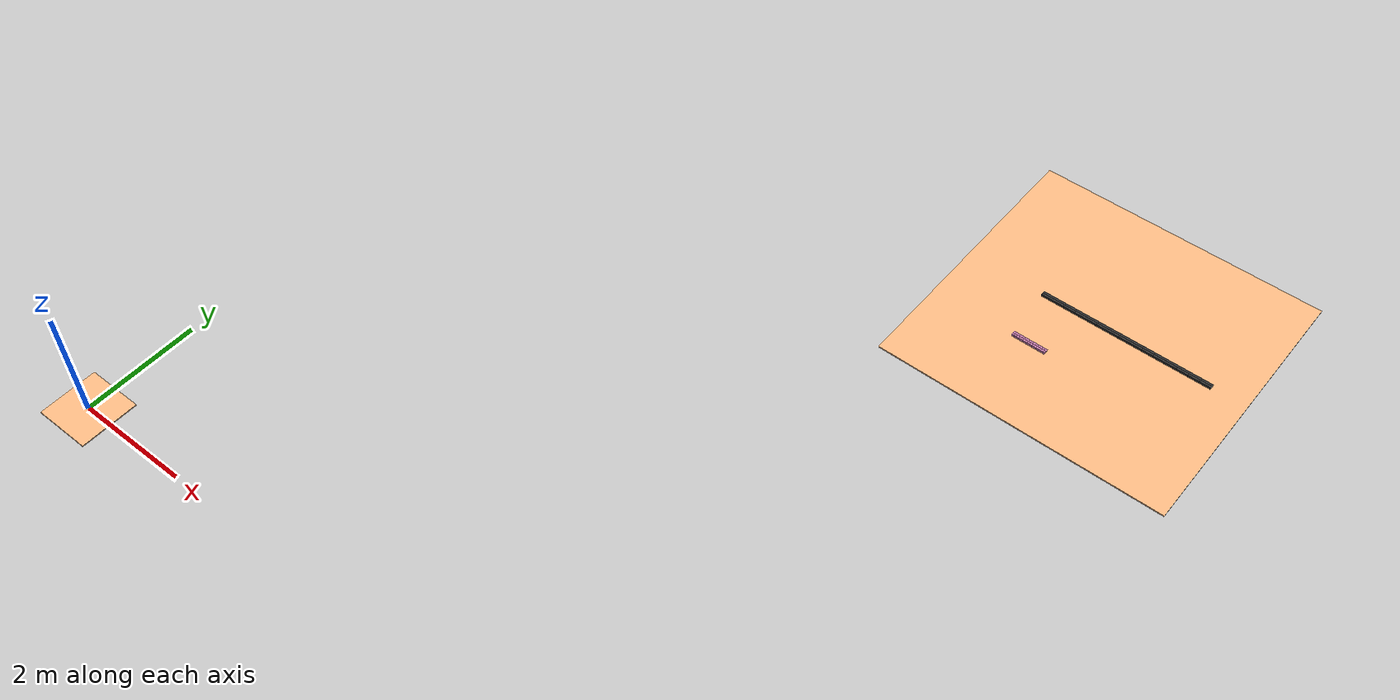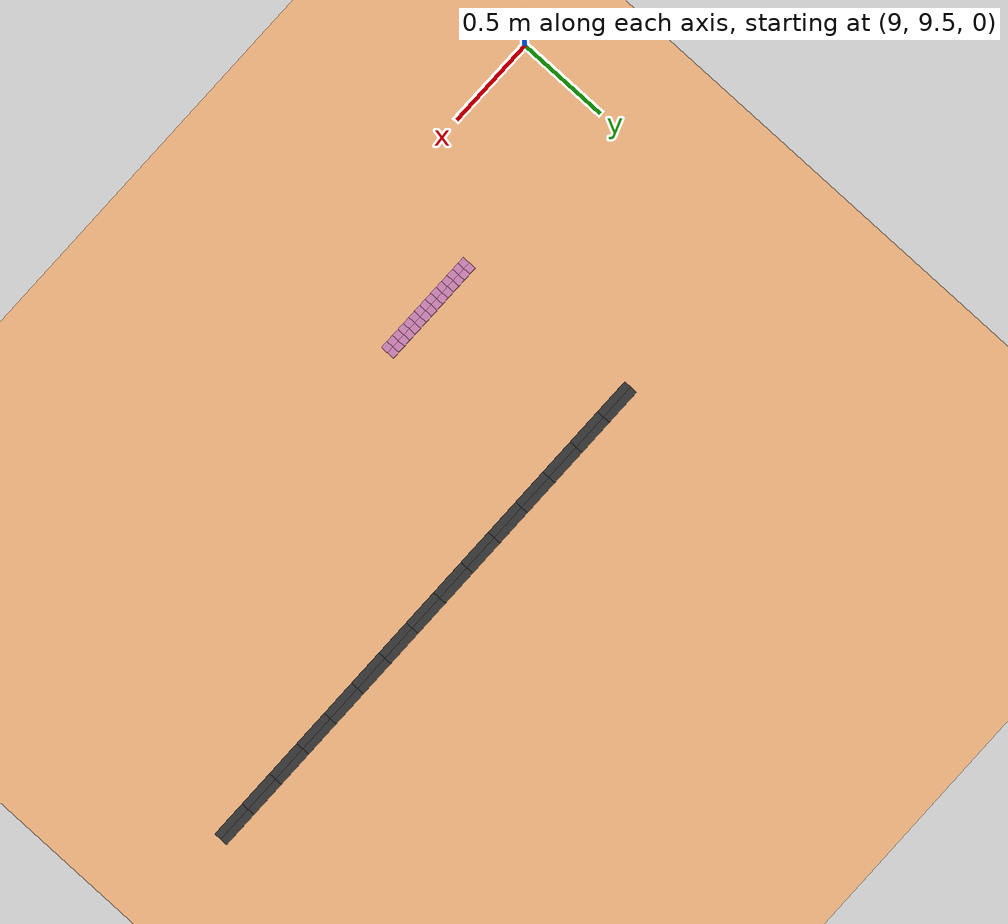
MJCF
<mujoco>
    <compiler angle="radian" coordinate="global" inertiafromgeom="auto"/>
    <option timestep="0.002">
        <flag warmstart="enable"/>
    </option>
    <size nconmax="3000" njmax="3000"/>

    <include file="shared.xml"/>
    <worldbody>
        <light directional="true" ambient="0.2 0.2 0.2" diffuse="0.8 0.8 0.8" specular="0.3 0.3 0.3" castshadow="false"
               pos="0 0 5" dir="0 0 -1" name="light0"/>
        <camera quat="0.866 0.500 0.0 0.0" pos="0 -1.8 1.4" name="camera" fovy="25"/>

        <include file="cube.xml"/>
        <include file="cuboid.xml"/>
        <body name="table" pos="0 0 -0.01">
            <geom name="table_base" pos="0 0 -0.01" material="table_mat" rgba="0.94 0.70 0.49 1" size="0.5 0.5 0.01"
                  type="box"/>
        </body>
        <body name="table1" pos="11 11 -0.01">
            <geom name="table_base1" pos="11 11 -0.01" material="table_mat" rgba="0.94 0.70 0.49 1" size="2.5 2.5 0.01"
                  type="box"/>
        </body>
    </worldbody>

</mujoco>

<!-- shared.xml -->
<mujoco>
    <asset>
        <texture builtin="gradient" height="100" rgb1="0.9 0.9 0.9" rgb2="0.9 0.9 0.9" type="skybox" width="100"/>
        <texture builtin="flat" height="32" name="cube_tex" rgb1="1 1 1" type="cube" width="32"/>
        <texture builtin="flat" height="32" name="cuboid_tex" rgb1="1 1 1" type="cube" width="32"/>
        <texture builtin="flat" height="32" name="table_tex" rgb1="1 1 1" type="cube" width="32"/>
        <texture builtin="flat" height="32" name="cube_0_tex" rgb1="1 1 1" type="cube" width="32"/>
        <texture builtin="flat" height="32" name="cuboid_0_tex" rgb1="1 1 1" type="cube" width="32"/>
        <texture builtin="flat" height="32" name="cube_1_tex" rgb1="1 1 1" type="cube" width="32"/>
        <texture builtin="flat" height="32" name="cuboid_1_tex" rgb1="1 1 1" type="cube" width="32"/>
        <texture builtin="flat" height="32" name="cube_2_tex" rgb1="1 1 1" type="cube" width="32"/>
        <texture builtin="flat" height="32" name="cuboid_2_tex" rgb1="1 1 1" type="cube" width="32"/>
        <texture builtin="flat" height="32" name="cube_3_tex" rgb1="1 1 1" type="cube" width="32"/>
        <texture builtin="flat" height="32" name="cuboid_3_tex" rgb1="1 1 1" type="cube" width="32"/>
        <texture builtin="flat" height="32" name="cube_4_tex" rgb1="1 1 1" type="cube" width="32"/>
        <texture builtin="flat" height="32" name="cuboid_4_tex" rgb1="1 1 1" type="cube" width="32"/>
        <texture builtin="flat" height="32" name="cube_5_tex" rgb1="1 1 1" type="cube" width="32"/>
        <texture builtin="flat" height="32" name="cuboid_5_tex" rgb1="1 1 1" type="cube" width="32"/>
        <texture builtin="flat" height="32" name="cube_6_tex" rgb1="1 1 1" type="cube" width="32"/>
        <texture builtin="flat" height="32" name="cuboid_6_tex" rgb1="1 1 1" type="cube" width="32"/>
        <texture builtin="flat" height="32" name="cube_7_tex" rgb1="1 1 1" type="cube" width="32"/>
        <texture builtin="flat" height="32" name="cuboid_7_tex" rgb1="1 1 1" type="cube" width="32"/>
        <texture builtin="flat" height="32" name="cube_8_tex" rgb1="1 1 1" type="cube" width="32"/>
        <texture builtin="flat" height="32" name="cuboid_8_tex" rgb1="1 1 1" type="cube" width="32"/>
        <texture builtin="flat" height="32" name="cube_9_tex" rgb1="1 1 1" type="cube" width="32"/>
        <texture builtin="flat" height="32" name="cuboid_9_tex" rgb1="1 1 1" type="cube" width="32"/>
        <texture builtin="flat" height="32" name="cube_10_tex" rgb1="1 1 1" type="cube" width="32"/>
        <texture builtin="flat" height="32" name="cuboid_10_tex" rgb1="1 1 1" type="cube" width="32"/>
        <texture builtin="flat" height="32" name="cube_11_tex" rgb1="1 1 1" type="cube" width="32"/>
        <texture builtin="flat" height="32" name="cuboid_11_tex" rgb1="1 1 1" type="cube" width="32"/>
        <texture builtin="flat" height="32" name="cube_12_tex" rgb1="1 1 1" type="cube" width="32"/>
        <texture builtin="flat" height="32" name="cuboid_12_tex" rgb1="1 1 1" type="cube" width="32"/>
        <texture builtin="flat" height="32" name="cube_13_tex" rgb1="1 1 1" type="cube" width="32"/>
        <texture builtin="flat" height="32" name="cuboid_13_tex" rgb1="1 1 1" type="cube" width="32"/>
        <texture builtin="flat" height="32" name="cube_14_tex" rgb1="1 1 1" type="cube" width="32"/>
        <texture builtin="flat" height="32" name="cuboid_14_tex" rgb1="1 1 1" type="cube" width="32"/>
        <texture builtin="flat" height="32" name="cube_15_tex" rgb1="1 1 1" type="cube" width="32"/>
        <texture builtin="flat" height="32" name="cuboid_15_tex" rgb1="1 1 1" type="cube" width="32"/>
        <texture builtin="flat" height="32" name="cube_16_tex" rgb1="1 1 1" type="cube" width="32"/>
        <texture builtin="flat" height="32" name="cuboid_16_tex" rgb1="1 1 1" type="cube" width="32"/>
        <texture builtin="flat" height="32" name="cube_17_tex" rgb1="1 1 1" type="cube" width="32"/>
        <texture builtin="flat" height="32" name="cuboid_17_tex" rgb1="1 1 1" type="cube" width="32"/>
        <texture builtin="flat" height="32" name="cube_18_tex" rgb1="1 1 1" type="cube" width="32"/>
        <texture builtin="flat" height="32" name="cuboid_18_tex" rgb1="1 1 1" type="cube" width="32"/>
        <texture builtin="flat" height="32" name="cube_19_tex" rgb1="1 1 1" type="cube" width="32"/>
        <texture builtin="flat" height="32" name="cuboid_19_tex" rgb1="1 1 1" type="cube" width="32"/>
        <texture builtin="flat" height="32" name="cube_20_tex" rgb1="1 1 1" type="cube" width="32"/>
        <texture builtin="flat" height="32" name="cuboid_20_tex" rgb1="1 1 1" type="cube" width="32"/>
        <texture builtin="flat" height="32" name="cube_21_tex" rgb1="1 1 1" type="cube" width="32"/>
        <texture builtin="flat" height="32" name="cuboid_21_tex" rgb1="1 1 1" type="cube" width="32"/>
        <texture builtin="flat" height="32" name="cube_22_tex" rgb1="1 1 1" type="cube" width="32"/>
        <texture builtin="flat" height="32" name="cuboid_22_tex" rgb1="1 1 1" type="cube" width="32"/>
        <texture builtin="flat" height="32" name="cube_23_tex" rgb1="1 1 1" type="cube" width="32"/>
        <texture builtin="flat" height="32" name="cuboid_23_tex" rgb1="1 1 1" type="cube" width="32"/>
        <texture builtin="flat" height="32" name="cube_24_tex" rgb1="1 1 1" type="cube" width="32"/>
        <texture builtin="flat" height="32" name="cuboid_24_tex" rgb1="1 1 1" type="cube" width="32"/>
        <texture builtin="flat" height="32" name="cube_25_tex" rgb1="1 1 1" type="cube" width="32"/>
        <texture builtin="flat" height="32" name="cuboid_25_tex" rgb1="1 1 1" type="cube" width="32"/>
        <texture builtin="flat" height="32" name="cube_26_tex" rgb1="1 1 1" type="cube" width="32"/>
        <texture builtin="flat" height="32" name="cuboid_26_tex" rgb1="1 1 1" type="cube" width="32"/>
        <texture builtin="flat" height="32" name="cube_27_tex" rgb1="1 1 1" type="cube" width="32"/>
        <texture builtin="flat" height="32" name="cuboid_27_tex" rgb1="1 1 1" type="cube" width="32"/>
        <texture builtin="flat" height="32" name="cube_28_tex" rgb1="1 1 1" type="cube" width="32"/>
        <texture builtin="flat" height="32" name="cuboid_28_tex" rgb1="1 1 1" type="cube" width="32"/>
        <texture builtin="flat" height="32" name="cube_29_tex" rgb1="1 1 1" type="cube" width="32"/>
        <texture builtin="flat" height="32" name="cuboid_29_tex" rgb1="1 1 1" type="cube" width="32"/>

        <material name="table_mat" specular="0" shininess="0.5" reflectance="0" rgba="0.2 0.2 0.2 1"
                  texture="table_tex"/>
        <material name="cube_mat" specular="0" shininess="0.5" reflectance="0" rgba="0.2 0.2 0.2 1" texture="cube_tex"/>
        <material name="cuboid_mat" specular="0" shininess="0.5" reflectance="0" rgba="0.2 0.2 0.2 1"
                  texture="cuboid_tex"/>
        <material name="cube_0_mat" specular="0" shininess="0.5" reflectance="0" rgba="0.2 0.2 0.2 1"
                  texture="cube_0_tex"/>
        <material name="cuboid_0_mat" specular="0" shininess="0.5" reflectance="0" rgba="0.2 0.2 0.2 1"
                  texture="cuboid_0_tex"/>
        <material name="cube_1_mat" specular="0" shininess="0.5" reflectance="0" rgba="0.2 0.2 0.2 1"
                  texture="cube_1_tex"/>
        <material name="cuboid_1_mat" specular="0" shininess="0.5" reflectance="0" rgba="0.2 0.2 0.2 1"
                  texture="cuboid_1_tex"/>
        <material name="cube_2_mat" specular="0" shininess="0.5" reflectance="0" rgba="0.2 0.2 0.2 1"
                  texture="cube_2_tex"/>
        <material name="cuboid_2_mat" specular="0" shininess="0.5" reflectance="0" rgba="0.2 0.2 0.2 1"
                  texture="cuboid_2_tex"/>
        <material name="cube_3_mat" specular="0" shininess="0.5" reflectance="0" rgba="0.2 0.2 0.2 1"
                  texture="cube_3_tex"/>
        <material name="cuboid_3_mat" specular="0" shininess="0.5" reflectance="0" rgba="0.2 0.2 0.2 1"
                  texture="cuboid_3_tex"/>
        <material name="cube_4_mat" specular="0" shininess="0.5" reflectance="0" rgba="0.2 0.2 0.2 1"
                  texture="cube_4_tex"/>
        <material name="cuboid_4_mat" specular="0" shininess="0.5" reflectance="0" rgba="0.2 0.2 0.2 1"
                  texture="cuboid_4_tex"/>
        <material name="cube_5_mat" specular="0" shininess="0.5" reflectance="0" rgba="0.2 0.2 0.2 1"
                  texture="cube_5_tex"/>
        <material name="cuboid_5_mat" specular="0" shininess="0.5" reflectance="0" rgba="0.2 0.2 0.2 1"
                  texture="cuboid_5_tex"/>
        <material name="cube_6_mat" specular="0" shininess="0.5" reflectance="0" rgba="0.2 0.2 0.2 1"
                  texture="cube_6_tex"/>
        <material name="cuboid_6_mat" specular="0" shininess="0.5" reflectance="0" rgba="0.2 0.2 0.2 1"
                  texture="cuboid_6_tex"/>
        <material name="cube_7_mat" specular="0" shininess="0.5" reflectance="0" rgba="0.2 0.2 0.2 1"
                  texture="cube_7_tex"/>
        <material name="cuboid_7_mat" specular="0" shininess="0.5" reflectance="0" rgba="0.2 0.2 0.2 1"
                  texture="cuboid_7_tex"/>
        <material name="cube_8_mat" specular="0" shininess="0.5" reflectance="0" rgba="0.2 0.2 0.2 1"
                  texture="cube_8_tex"/>
        <material name="cuboid_8_mat" specular="0" shininess="0.5" reflectance="0" rgba="0.2 0.2 0.2 1"
                  texture="cuboid_8_tex"/>
        <material name="cube_9_mat" specular="0" shininess="0.5" reflectance="0" rgba="0.2 0.2 0.2 1"
                  texture="cube_9_tex"/>
        <material name="cuboid_9_mat" specular="0" shininess="0.5" reflectance="0" rgba="0.2 0.2 0.2 1"
                  texture="cuboid_9_tex"/>
        <material name="cube_10_mat" specular="0" shininess="0.5" reflectance="0" rgba="0.2 0.2 0.2 1"
                  texture="cube_10_tex"/>
        <material name="cuboid_10_mat" specular="0" shininess="0.5" reflectance="0" rgba="0.2 0.2 0.2 1"
                  texture="cuboid_10_tex"/>
        <material name="cube_11_mat" specular="0" shininess="0.5" reflectance="0" rgba="0.2 0.2 0.2 1"
                  texture="cube_11_tex"/>
        <material name="cuboid_11_mat" specular="0" shininess="0.5" reflectance="0" rgba="0.2 0.2 0.2 1"
                  texture="cuboid_11_tex"/>
        <material name="cube_12_mat" specular="0" shininess="0.5" reflectance="0" rgba="0.2 0.2 0.2 1"
                  texture="cube_12_tex"/>
        <material name="cuboid_12_mat" specular="0" shininess="0.5" reflectance="0" rgba="0.2 0.2 0.2 1"
                  texture="cuboid_12_tex"/>
        <material name="cube_13_mat" specular="0" shininess="0.5" reflectance="0" rgba="0.2 0.2 0.2 1"
                  texture="cube_13_tex"/>
        <material name="cuboid_13_mat" specular="0" shininess="0.5" reflectance="0" rgba="0.2 0.2 0.2 1"
                  texture="cuboid_13_tex"/>
        <material name="cube_14_mat" specular="0" shininess="0.5" reflectance="0" rgba="0.2 0.2 0.2 1"
                  texture="cube_14_tex"/>
        <material name="cuboid_14_mat" specular="0" shininess="0.5" reflectance="0" rgba="0.2 0.2 0.2 1"
                  texture="cuboid_14_tex"/>
        <material name="cube_15_mat" specular="0" shininess="0.5" reflectance="0" rgba="0.2 0.2 0.2 1"
                  texture="cube_15_tex"/>
        <material name="cuboid_15_mat" specular="0" shininess="0.5" reflectance="0" rgba="0.2 0.2 0.2 1"
                  texture="cuboid_15_tex"/>
        <material name="cube_16_mat" specular="0" shininess="0.5" reflectance="0" rgba="0.2 0.2 0.2 1"
                  texture="cube_16_tex"/>
        <material name="cuboid_16_mat" specular="0" shininess="0.5" reflectance="0" rgba="0.2 0.2 0.2 1"
                  texture="cuboid_16_tex"/>
        <material name="cube_17_mat" specular="0" shininess="0.5" reflectance="0" rgba="0.2 0.2 0.2 1"
                  texture="cube_17_tex"/>
        <material name="cuboid_17_mat" specular="0" shininess="0.5" reflectance="0" rgba="0.2 0.2 0.2 1"
                  texture="cuboid_17_tex"/>
        <material name="cube_18_mat" specular="0" shininess="0.5" reflectance="0" rgba="0.2 0.2 0.2 1"
                  texture="cube_18_tex"/>
        <material name="cuboid_18_mat" specular="0" shininess="0.5" reflectance="0" rgba="0.2 0.2 0.2 1"
                  texture="cuboid_18_tex"/>
        <material name="cube_19_mat" specular="0" shininess="0.5" reflectance="0" rgba="0.2 0.2 0.2 1"
                  texture="cube_19_tex"/>
        <material name="cuboid_19_mat" specular="0" shininess="0.5" reflectance="0" rgba="0.2 0.2 0.2 1"
                  texture="cuboid_19_tex"/>
        <material name="cube_20_mat" specular="0" shininess="0.5" reflectance="0" rgba="0.2 0.2 0.2 1"
                  texture="cube_20_tex"/>
        <material name="cuboid_20_mat" specular="0" shininess="0.5" reflectance="0" rgba="0.2 0.2 0.2 1"
                  texture="cuboid_20_tex"/>
        <material name="cube_21_mat" specular="0" shininess="0.5" reflectance="0" rgba="0.2 0.2 0.2 1"
                  texture="cube_21_tex"/>
        <material name="cuboid_21_mat" specular="0" shininess="0.5" reflectance="0" rgba="0.2 0.2 0.2 1"
                  texture="cuboid_21_tex"/>
        <material name="cube_22_mat" specular="0" shininess="0.5" reflectance="0" rgba="0.2 0.2 0.2 1"
                  texture="cube_22_tex"/>
        <material name="cuboid_22_mat" specular="0" shininess="0.5" reflectance="0" rgba="0.2 0.2 0.2 1"
                  texture="cuboid_22_tex"/>
        <material name="cube_23_mat" specular="0" shininess="0.5" reflectance="0" rgba="0.2 0.2 0.2 1"
                  texture="cube_23_tex"/>
        <material name="cuboid_23_mat" specular="0" shininess="0.5" reflectance="0" rgba="0.2 0.2 0.2 1"
                  texture="cuboid_23_tex"/>
        <material name="cube_24_mat" specular="0" shininess="0.5" reflectance="0" rgba="0.2 0.2 0.2 1"
                  texture="cube_24_tex"/>
        <material name="cuboid_24_mat" specular="0" shininess="0.5" reflectance="0" rgba="0.2 0.2 0.2 1"
                  texture="cuboid_24_tex"/>
        <material name="cube_25_mat" specular="0" shininess="0.5" reflectance="0" rgba="0.2 0.2 0.2 1"
                  texture="cube_25_tex"/>
        <material name="cuboid_25_mat" specular="0" shininess="0.5" reflectance="0" rgba="0.2 0.2 0.2 1"
                  texture="cuboid_25_tex"/>
        <material name="cube_26_mat" specular="0" shininess="0.5" reflectance="0" rgba="0.2 0.2 0.2 1"
                  texture="cube_26_tex"/>
        <material name="cuboid_26_mat" specular="0" shininess="0.5" reflectance="0" rgba="0.2 0.2 0.2 1"
                  texture="cuboid_26_tex"/>
        <material name="cube_27_mat" specular="0" shininess="0.5" reflectance="0" rgba="0.2 0.2 0.2 1"
                  texture="cube_27_tex"/>
        <material name="cuboid_27_mat" specular="0" shininess="0.5" reflectance="0" rgba="0.2 0.2 0.2 1"
                  texture="cuboid_27_tex"/>
        <material name="cube_28_mat" specular="0" shininess="0.5" reflectance="0" rgba="0.2 0.2 0.2 1"
                  texture="cube_28_tex"/>
        <material name="cuboid_28_mat" specular="0" shininess="0.5" reflectance="0" rgba="0.2 0.2 0.2 1"
                  texture="cuboid_28_tex"/>
        <material name="cube_29_mat" specular="0" shininess="0.5" reflectance="0" rgba="0.2 0.2 0.2 1"
                  texture="cube_29_tex"/>
        <material name="cuboid_29_mat" specular="0" shininess="0.5" reflectance="0" rgba="0.2 0.2 0.2 1"
                  texture="cuboid_29_tex"/>
    </asset>

    <default>
        <default class="cube">
            <geom mass="1" size="0.02 0.02 0.02" type="box" material="cube_mat" rgba="0.8 0.5 0.7 1"/>
            <joint armature="0.005" damping="0.01" frictionloss="0" stiffness="0" type="free"/>
        </default>
        <default class="cuboid">
            <geom mass="1" size="0.1 0.02 0.02" type="box" material="cuboid_mat" rgba="0.5 0.5 0.5 1"/>
            <joint armature="0.005" damping="0.01" frictionloss="0" stiffness="0" type="free"/>
        </default>
    </default>
</mujoco>

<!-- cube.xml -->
<mujoco>
    <body name="cube_0" pos="10 10 0.02">
        <geom name="cube_0" class="cube" material="cube_0_mat" pos="10 10 0.02"/>
        <joint name="cube_0" class="cube"/>
    </body>
    <body name="cube_1" pos="10.04 10.0 0.02">
        <geom name="cube_1" class="cube" material="cube_1_mat" pos="10.04 10.0 0.02"/>
        <joint name="cube_1" class="cube"/>
    </body>
    <body name="cube_2" pos="10.08 10.0 0.02">
        <geom name="cube_2" class="cube" material="cube_2_mat" pos="10.08 10.0 0.02"/>
        <joint name="cube_2" class="cube"/>
    </body>
    <body name="cube_3" pos="10.12 10.0 0.02">
        <geom name="cube_3" class="cube" material="cube_3_mat" pos="10.12 10.0 0.02"/>
        <joint name="cube_3" class="cube"/>
    </body>
    <body name="cube_4" pos="10.16 10.0 0.02">
        <geom name="cube_4" class="cube" material="cube_4_mat" pos="10.16 10.0 0.02"/>
        <joint name="cube_4" class="cube"/>
    </body>
    <body name="cube_5" pos="10.20 10.0 0.02">
        <geom name="cube_5" class="cube" material="cube_5_mat" pos="10.20 10.0 0.02"/>
        <joint name="cube_5" class="cube"/>
    </body>
    <body name="cube_6" pos="10.24 10.0 0.02">
        <geom name="cube_6" class="cube" material="cube_6_mat" pos="10.24 10.0 0.02"/>
        <joint name="cube_6" class="cube"/>
    </body>
    <body name="cube_7" pos="10.28 10.0 0.02">
        <geom name="cube_7" class="cube" material="cube_7_mat" pos="10.28 10.0 0.02"/>
        <joint name="cube_7" class="cube"/>
    </body>
    <body name="cube_8" pos="10.32 10.0 0.02">
        <geom name="cube_8" class="cube" material="cube_8_mat" pos="10.32 10.0 0.02"/>
        <joint name="cube_8" class="cube"/>
    </body>
    <body name="cube_9" pos="10.36 10.0 0.02">
        <geom name="cube_9" class="cube" material="cube_9_mat" pos="10.36 10.0 0.02"/>
        <joint name="cube_9" class="cube"/>
    </body>
    <body name="cube_10" pos="10.40 10.0 0.02">
        <geom name="cube_10" class="cube" material="cube_10_mat" pos="10.40 10.0 0.02"/>
        <joint name="cube_10" class="cube"/>
    </body>
    <body name="cube_11" pos="10.44 10.0 0.02">
        <geom name="cube_11" class="cube" material="cube_11_mat" pos="10.44 10.0 0.02"/>
        <joint name="cube_11" class="cube"/>
    </body>
    <body name="cube_12" pos="10.48 10.0 0.02">
        <geom name="cube_12" class="cube" material="cube_12_mat" pos="10.48 10.0 0.02"/>
        <joint name="cube_12" class="cube"/>
    </body>
    <body name="cube_13" pos="10.52 10.0 0.02">
        <geom name="cube_13" class="cube" material="cube_13_mat" pos="10.52 10.0 0.02"/>
        <joint name="cube_13" class="cube"/>
    </body>
    <body name="cube_14" pos="10.56 10.0 0.02">
        <geom name="cube_14" class="cube" material="cube_14_mat" pos="10.56 10.0 0.02"/>
        <joint name="cube_14" class="cube"/>
    </body>
    <body name="cube_15" pos="10 10.04 0.02">
        <geom name="cube_15" class="cube" material="cube_15_mat" pos="10 10.04 0.02"/>
        <joint name="cube_15" class="cube"/>
    </body>
    <body name="cube_16" pos="10.04 10.04 0.02">
        <geom name="cube_16" class="cube" material="cube_16_mat" pos="10.04 10.04 0.02"/>
        <joint name="cube_16" class="cube"/>
    </body>
    <body name="cube_17" pos="10.08 10.04 0.02">
        <geom name="cube_17" class="cube" material="cube_17_mat" pos="10.08 10.04 0.02"/>
        <joint name="cube_17" class="cube"/>
    </body>
    <body name="cube_18" pos="10.12 10.04 0.02">
        <geom name="cube_18" class="cube" material="cube_18_mat" pos="10.12 10.04 0.02"/>
        <joint name="cube_18" class="cube"/>
    </body>
    <body name="cube_19" pos="10.16 10.04 0.02">
        <geom name="cube_19" class="cube" material="cube_19_mat" pos="10.16 10.04 0.02"/>
        <joint name="cube_19" class="cube"/>
    </body>
    <body name="cube_20" pos="10.20 10.04 0.02">
        <geom name="cube_20" class="cube" material="cube_20_mat" pos="10.20 10.04 0.02"/>
        <joint name="cube_20" class="cube"/>
    </body>
    <body name="cube_21" pos="10.24 10.04 0.02">
        <geom name="cube_21" class="cube" material="cube_21_mat" pos="10.24 10.04 0.02"/>
        <joint name="cube_21" class="cube"/>
    </body>
    <body name="cube_22" pos="10.28 10.04 0.02">
        <geom name="cube_22" class="cube" material="cube_22_mat" pos="10.28 10.04 0.02"/>
        <joint name="cube_22" class="cube"/>
    </body>
    <body name="cube_23" pos="10.32 10.04 0.02">
        <geom name="cube_23" class="cube" material="cube_23_mat" pos="10.32 10.04 0.02"/>
        <joint name="cube_23" class="cube"/>
    </body>
    <body name="cube_24" pos="10.36 10.04 0.02">
        <geom name="cube_24" class="cube" material="cube_24_mat" pos="10.36 10.04 0.02"/>
        <joint name="cube_24" class="cube"/>
    </body>
    <body name="cube_25" pos="10.40 10.04 0.02">
        <geom name="cube_25" class="cube" material="cube_25_mat" pos="10.40 10.04 0.02"/>
        <joint name="cube_25" class="cube"/>
    </body>
    <body name="cube_26" pos="10.44 10.04 0.02">
        <geom name="cube_26" class="cube" material="cube_26_mat" pos="10.44 10.04 0.02"/>
        <joint name="cube_26" class="cube"/>
    </body>
    <body name="cube_27" pos="10.48 10.04 0.02">
        <geom name="cube_27" class="cube" material="cube_27_mat" pos="10.48 10.04 0.02"/>
        <joint name="cube_27" class="cube"/>
    </body>
    <body name="cube_28" pos="10.52 10.04 0.02">
        <geom name="cube_28" class="cube" material="cube_28_mat" pos="10.52 10.04 0.02"/>
        <joint name="cube_28" class="cube"/>
    </body>
    <body name="cube_29" pos="10.56 10.04 0.02">
        <geom name="cube_29" class="cube" material="cube_29_mat" pos="10.56 10.04 0.02"/>
        <joint name="cube_29" class="cube"/>
    </body>
</mujoco>

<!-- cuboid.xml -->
<mujoco>
    <body name="cuboid_0" pos="10.0 11.0 0.02">
        <geom name="cuboid_0" class="cuboid" material="cuboid_0_mat" pos="10.0 11.0 0.02"/>
        <joint name="cuboid_0" class="cuboid"/>
    </body>
    <body name="cuboid_1" pos="10.2 11.0 0.02">
        <geom name="cuboid_1" class="cuboid" material="cuboid_1_mat" pos="10.2 11.0 0.02"/>
        <joint name="cuboid_1" class="cuboid"/>
    </body>
    <body name="cuboid_2" pos="10.4 11.0 0.02">
        <geom name="cuboid_2" class="cuboid" material="cuboid_2_mat" pos="10.4 11.0 0.02"/>
        <joint name="cuboid_2" class="cuboid"/>
    </body>
    <body name="cuboid_3" pos="10.6 11.0 0.02">
        <geom name="cuboid_3" class="cuboid" material="cuboid_3_mat" pos="10.6 11.0 0.02"/>
        <joint name="cuboid_3" class="cuboid"/>
    </body>
    <body name="cuboid_4" pos="10.8 11.0 0.02">
        <geom name="cuboid_4" class="cuboid" material="cuboid_4_mat" pos="10.8 11.0 0.02"/>
        <joint name="cuboid_4" class="cuboid"/>
    </body>
    <body name="cuboid_5" pos="11 11.0 0.02">
        <geom name="cuboid_5" class="cuboid" material="cuboid_5_mat" pos="11 11.0 0.02"/>
        <joint name="cuboid_5" class="cuboid"/>
    </body>
    <body name="cuboid_6" pos="11.2 11.0 0.02">
        <geom name="cuboid_6" class="cuboid" material="cuboid_6_mat" pos="11.2 11.0 0.02"/>
        <joint name="cuboid_6" class="cuboid"/>
    </body>
    <body name="cuboid_7" pos="11.4 11.0 0.02">
        <geom name="cuboid_7" class="cuboid" material="cuboid_7_mat" pos="11.4 11.0 0.02"/>
        <joint name="cuboid_7" class="cuboid"/>
    </body>
    <body name="cuboid_8" pos="11.6 11.0 0.02">
        <geom name="cuboid_8" class="cuboid" material="cuboid_8_mat" pos="11.6 11.0 0.02"/>
        <joint name="cuboid_8" class="cuboid"/>
    </body>
    <body name="cuboid_9" pos="11.8 11.0 0.02">
        <geom name="cuboid_9" class="cuboid" material="cuboid_9_mat" pos="11.8 11.0 0.02"/>
        <joint name="cuboid_9" class="cuboid"/>
    </body>
    <body name="cuboid_10" pos="12.0 11.0 0.02">
        <geom name="cuboid_10" class="cuboid" material="cuboid_10_mat" pos="12. 11.0 0.02"/>
        <joint name="cuboid_10" class="cuboid"/>
    </body>
    <body name="cuboid_11" pos="12.2 11.0 0.02">
        <geom name="cuboid_11" class="cuboid" material="cuboid_11_mat" pos="12.2 11.0 0.02"/>
        <joint name="cuboid_11" class="cuboid"/>
    </body>
    <body name="cuboid_12" pos="12.4 11.0 0.02">
        <geom name="cuboid_12" class="cuboid" material="cuboid_12_mat" pos="12.4 11.0 0.02"/>
        <joint name="cuboid_12" class="cuboid"/>
    </body>
    <body name="cuboid_13" pos="12.6 11.0 0.02">
        <geom name="cuboid_13" class="cuboid" material="cuboid_13_mat" pos="12.6 11.0 0.02"/>
        <joint name="cuboid_13" class="cuboid"/>
    </body>
    <body name="cuboid_14" pos="12.8 11.0 0.02">
        <geom name="cuboid_14" class="cuboid" material="cuboid_14_mat" pos="12.8 11.0 0.02"/>
        <joint name="cuboid_14" class="cuboid"/>
    </body>
    <body name="cuboid_15" pos="10.0 11.04 0.02">
        <geom name="cuboid_15" class="cuboid" material="cuboid_15_mat" pos="10.0 11.04 0.02"/>
        <joint name="cuboid_15" class="cuboid"/>
    </body>
    <body name="cuboid_16" pos="10.2 11.04 0.02">
        <geom name="cuboid_16" class="cuboid" material="cuboid_16_mat" pos="10.2 11.04 0.02"/>
        <joint name="cuboid_16" class="cuboid"/>
    </body>
    <body name="cuboid_17" pos="10.4 11.04 0.02">
        <geom name="cuboid_17" class="cuboid" material="cuboid_17_mat" pos="10.4 11.04 0.02"/>
        <joint name="cuboid_17" class="cuboid"/>
    </body>
    <body name="cuboid_18" pos="10.6 11.04 0.02">
        <geom name="cuboid_18" class="cuboid" material="cuboid_18_mat" pos="10.6 11.04 0.02"/>
        <joint name="cuboid_18" class="cuboid"/>
    </body>
    <body name="cuboid_19" pos="10.8 11.04 0.02">
        <geom name="cuboid_19" class="cuboid" material="cuboid_19_mat" pos="10.8 11.04 0.02"/>
        <joint name="cuboid_19" class="cuboid"/>
    </body>
    <body name="cuboid_20" pos="11.0 11.04 0.02">
        <geom name="cuboid_20" class="cuboid" material="cuboid_20_mat" pos="11.0 11.04 0.02"/>
        <joint name="cuboid_20" class="cuboid"/>
    </body>
    <body name="cuboid_21" pos="11.2 11.04 0.02">
        <geom name="cuboid_21" class="cuboid" material="cuboid_21_mat" pos="11.2 11.04 0.02"/>
        <joint name="cuboid_21" class="cuboid"/>
    </body>
    <body name="cuboid_22" pos="11.4 11.04 0.02">
        <geom name="cuboid_22" class="cuboid" material="cuboid_22_mat" pos="11.4 11.04 0.02"/>
        <joint name="cuboid_22" class="cuboid"/>
    </body>
    <body name="cuboid_23" pos="11.6 11.04 0.02">
        <geom name="cuboid_23" class="cuboid" material="cuboid_23_mat" pos="11.6 11.04 0.02"/>
        <joint name="cuboid_23" class="cuboid"/>
    </body>
    <body name="cuboid_24" pos="11.8 11.04 0.02">
        <geom name="cuboid_24" class="cuboid" material="cuboid_24_mat" pos="11.8 11.04 0.02"/>
        <joint name="cuboid_24" class="cuboid"/>
    </body>
    <body name="cuboid_25" pos="12.0 11.04 0.02">
        <geom name="cuboid_25" class="cuboid" material="cuboid_25_mat" pos="12.0 11.04 0.02"/>
        <joint name="cuboid_25" class="cuboid"/>
    </body>
    <body name="cuboid_26" pos="12.2 11.04 0.02">
        <geom name="cuboid_26" class="cuboid" material="cuboid_26_mat" pos="12.2 11.04 0.02"/>
        <joint name="cuboid_26" class="cuboid"/>
    </body>
    <body name="cuboid_27" pos="12.4 11.04 0.02">
        <geom name="cuboid_27" class="cuboid" material="cuboid_27_mat" pos="12.4 11.04 0.02"/>
        <joint name="cuboid_27" class="cuboid"/>
    </body>
    <body name="cuboid_28" pos="12.6 11.04 0.02">
        <geom name="cuboid_28" class="cuboid" material="cuboid_28_mat" pos="12.6 11.04 0.02"/>
        <joint name="cuboid_28" class="cuboid"/>
    </body>
    <body name="cuboid_29" pos="12.8 11.04 0.02">
        <geom name="cuboid_29" class="cuboid" material="cuboid_29_mat" pos="12.8 11.04 0.02"/>
        <joint name="cuboid_29" class="cuboid"/>
    </body>
</mujoco>
